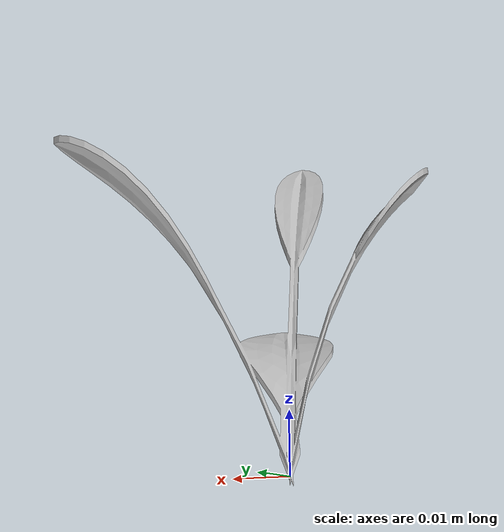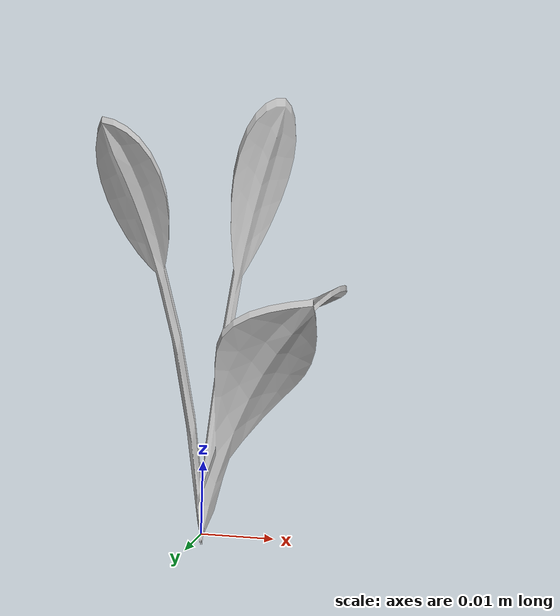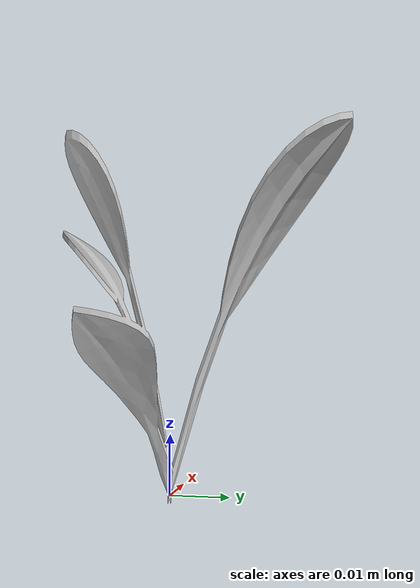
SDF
<sdf version="1.6">
  <model name="sugar_beet_2">
    <static>true</static>
    <link name="body">
      <visual name="visual">
        <geometry>
          <mesh>
            <uri>file:///sugar_beet_2/media/sugar_beet.dae</uri>
          </mesh>
        </geometry>
      </visual>
    </link>
  </model>
</sdf>
